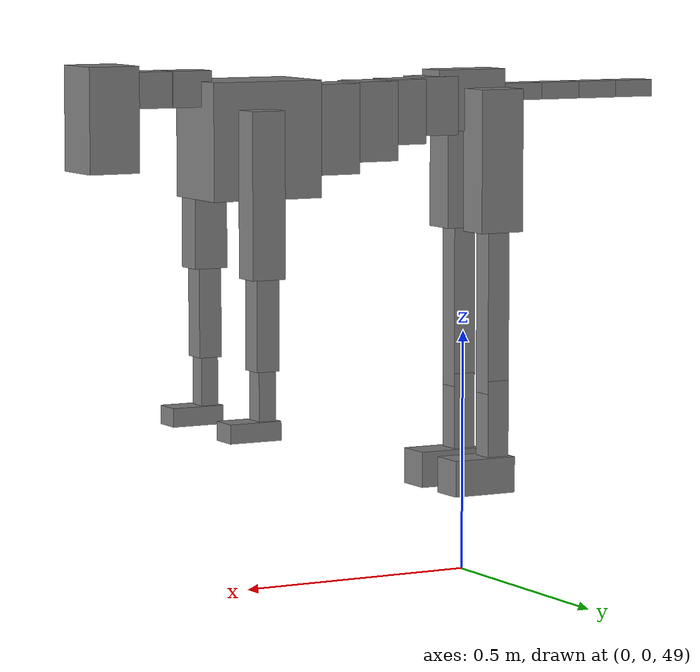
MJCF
<mujoco model="dog">

    <default>
        <joint armature="0.02" stiffness="1" damping="0.2" limited="true"/>
        <geom condim="3" friction="1 0.05 0.05" margin="0.01"/>
        <motor ctrllimited="true" ctrlrange="-1.0 1.0" forcelimited="true" gear="50"/>
    </default>

    <compiler inertiafromgeom="true" angle="radian"/>

    <option timestep="0.016" iterations="50" tolerance="1e-10" solver="Newton" jacobian="dense" cone="pyramidal"/>

    <size nconmax="20000" njmax="60000" nstack="5000000"/>
    <visual>
        <map force="0.1" zfar="30"/>
        <rgba haze="0.15 0.25 0.35 1"/>
        <quality shadowsize="2048"/>
        <global offwidth="800" offheight="800"/>
    </visual>

    <asset>
        <texture type="skybox" builtin="gradient" rgb1="0.3 0.5 0.7" rgb2="0 0 0" width="512" height="512"/>
        <texture name="texplane" type="2d" builtin="checker" rgb1=".2 .3 .4" rgb2=".1 0.15 0.2" width="512" height="512"
                 mark="cross" markrgb=".8 .8 .8"/>
        <texture name="texgeom" type="cube" builtin="flat" mark="cross" width="127" height="1278" rgb1="0.8 0.6 0.4"
                 rgb2="0.8 0.6 0.4" markrgb="1 1 1" random="0.01"/>

        <material name="matplane" reflectance="0.3" texture="texplane" texrepeat="1 1" texuniform="true"/>
        <material name="matgeom" texture="texgeom" texuniform="true" rgba="0.8 0.6 .4 1"/>
    </asset>

    <worldbody>
        <geom name="floor" pos="0 0 0" size="0 0 .25" type="plane" material="matplane" condim="3"/>

        <light directional="false" diffuse=".2 .2 .2" specular="0 0 0" pos="0 0 5" dir="0 0 -1" castshadow="false"/>
        <light mode="targetbodycom" target="torso" directional="false" diffuse=".8 .8 .8" specular="0.3 0.3 0.3"
               pos="0 0 4.0" dir="0 0 -1"/>

        <body name="root" pos="0 0 50">
            <freejoint name="root_1"/>
            <geom type="box" pos="0 0 -0.02" size="0.0774  0.0358  0.063" density="2030"/>

            <body name="spine1" pos="0.054 0 0">
                <joint name="spine1_y" axis="0 1 0" range="0 0.7" limited="true"/>
                <geom type="box" pos="0.02375 0 -0.03" size="0.04375  0.0375  0.05985" density="2030"/>

                <body name="spine2" pos="0.0612 0 0">
                    <joint name="spine2_y" axis="0 1 0" range="-0.15 0.15" limited="true"/>
                    <geom type="box" pos="0.03555  0  -0.04" size="0.04055  0.039  0.06615" density="2030"/>

                    <body name="spine3" pos="0.0730 0 0">
                        <joint name="spine3_y" axis="0 1 0" range="-0.15 0.15" limited="true"/>
                        <geom type="box" pos="0.03555  0  -0.057" size="0.04555  0.0445  0.081" density="2030"/>

                        <body name="spine4" pos="0.0780 0 0">
                            <joint name="spine4_y" axis="0 1 0" range="-0.15 0.15" limited="true"/>
                            <geom type="box" pos="0.05265  0  -0.07" size="0.05265  0.045  0.09135" density="2030"/>

                            <body name="torso" pos="0.1082 0 0">
                                <joint name="torso_y" axis="0 1 0" range="-0.15 0.15" limited="true"/>
                                <geom type="box" pos="0.11925  0  -0.085" size="0.11925  0.085  0.11745"
                                      density="2030"/>

                                <body name="neck1" pos="0.2160  0   0.0180">
                                    <joint name="neck1_y" axis="0 1 0" range="-1.2  -1" limited="true"/>
                                    <geom type="box" pos="0.0423  0  0" size="0.0423  0.03  0.036" density="2325"/>

                                    <body name="neck2" pos="0.0853  0  0">
                                        <joint name="neck2_y" axis="0 1 0" range="0.1  0" limited="true"/>
                                        <geom type="box" pos="0.0423  0  0" size="0.0423  0.03  0.036" density="2325"/>

                                        <body name="head" pos="0.0853  0  0">
                                            <joint name="head_y" axis="0 1 0" range="-0.3  -0.2" limited="true"/>
                                            <geom type="box" pos="0.0531  0  -0.055" size="0.0531  0.06  0.1044"
                                                  density="4030"/>

                                        </body>
                                    </body>
                                </body>

                                <body name="front_shoulder" pos="0.156  0   -0.0480">
                                    <joint name="front_shoulder_y" axis="0 1 0" range="-1 1.5" limited="true"/>
                                    <geom type="box" pos="0 0.13 -0.1393" size="0.0357  0.0305  0.1659" density="1158"/>
                                    <geom type="box" pos="0 -0.13 -0.1393" size="0.0357  0.0305  0.1659"
                                          density="1158"/>

                                    <body name="front_elbow" pos="0  0  -0.2785">
                                        <joint name="front_elbow_y" axis="0 1 0" range="-2 0" limited="true"/>
                                        <geom type="box" pos="0 0.13 -0.1043" size="0.0246  0.0251  0.1043"
                                              density="1081"/>
                                        <geom type="box" pos="0 -0.13 -0.1043" size="0.0246  0.0251  0.1043"
                                              density="1081"/>

                                        <body name="front_wrist" pos="0  0  -0.2087">
                                            <joint name="front_wrist_y" axis="0 1 0" range="-0.2 0" limited="true"/>
                                            <geom type="box" pos="0 0.13 -0.0567" size="0.0185  0.0205  0.0698"
                                                  density="1664"/>
                                            <geom type="box" pos="0 -0.13 -0.0567" size="0.0185  0.0205  0.0698"
                                                  density="1664"/>

                                            <body name="front_finger_end" pos="0  0  -0.1134">
                                                <joint name="front_finger_y" axis="0 1 0" range="-0.4 1"
                                                       limited="true"/>
                                                <geom type="box" pos="0.0305  0.13  -0.0042"
                                                      size="0.0559  0.0305  0.0192" density="1515"/>
                                                <geom type="box" pos="0.0305  -0.13  -0.0042"
                                                      size="0.0559  0.0305  0.0192" density="1515"/>

                                            </body>

                                        </body>
                                    </body>
                                </body>

                            </body>
                        </body>
                    </body>
                </body>
            </body>

            <body name="back_hip" pos="-0.03 0 -0.018">
                <joint name="back_hip_y" axis="0 1 0" range="-1.5 0.3" limited="true"/>
                <geom type="box" pos="0 0.07 -0.1239" size="0.0485  0.0381  0.1467" density="1154"/>
                <geom type="box" pos="0 -0.07 -0.1239" size="0.0485  0.0381  0.1467" density="1154"/>

                <body name="back_knee" pos="0  0  -0.2478">
                    <joint name="back_knee_y" axis="0 1 0" range="0 2.8" limited="true"/>
                    <geom type="box" pos="0 0.07 -0.1704" size="0.0246  0.0243  0.1859" density="1227"/>
                    <geom type="box" pos="0 -0.07 -0.1704" size="0.0246  0.0243  0.1859" density="1227"/>

                    <body name="back_ankle" pos="0  0  -0.3407">
                        <joint name="back_ankle_y" axis="0 1 0" range="-2.2 0" limited="true"/>
                        <geom type="box" pos="0 0.07 -0.0808" size="0.0244  0.0244  0.0920" density="1284"/>
                        <geom type="box" pos="0 -0.07 -0.0808" size="0.0244  0.0244  0.0920" density="1284"/>

                        <body name="back_toe_end" pos="0  0  -0.1615">
                            <joint name="back_toe_y" axis="0 1 0" range="-0.4 1" limited="true"/>
                            <geom type="box" pos="0.0380  0.07  -0.0223" size="0.0698  0.0380  0.0373" density="1515"/>
                            <geom type="box" pos="0.0380  -0.07  -0.0223" size="0.0698  0.0380  0.0373" density="1515"/>

                        </body>
                    </body>
                </body>
            </body>

            <body name="tail1" pos="-0.074 0 -0.006">
                <joint name="tail1_y" axis="0 1 0" range="-0.2 0.2" limited="true"/>
                <geom type="box" pos="-0.0536  0  0" size="0.045  0.025  0.0175" density="1587"/>

                <body name="tail2" pos="-0.09 0 0">
                    <joint name="tail2_y" axis="0 1 0" range="-0.2 0.2" limited="true"/>
                    <geom type="box" pos="-0.0536  0  0" size="0.045  0.025  0.0175" density="1587"/>

                    <body name="tail3" pos="-0.09 0 0">
                        <joint name="tail3_y" axis="0 1 0" range="-0.2 0.2" limited="true"/>
                        <geom type="box" pos="-0.0536  0  0" size="0.045  0.025  0.0175" density="1587"/>

                        <body name="tail4" pos="-0.09 0 0">
                            <joint name="tail4_y" axis="0 1 0" range="-0.2 0.2" limited="true"/>
                            <geom type="box" pos="-0.0536  0  0" size="0.045  0.025  0.0175" density="1587"/>

                        </body>
                    </body>
                </body>
            </body>
        </body>
    </worldbody>

    <actuator>
        <motor joint="spine1_y" forcerange="-150 150     "/>
        <motor joint="spine2_y" forcerange="-150 150     "/>
        <motor joint="spine3_y" forcerange="-150 150     "/>
        <motor joint="spine4_y" forcerange="-150 150     "/>
        <motor joint="torso_y" forcerange="-150 150     "/>
        <motor joint="neck1_y" forcerange="-100 100       "/>
        <motor joint="neck2_y" forcerange="-100 100       "/>
        <motor joint="head_y" forcerange="-150 150       "/>
        <motor joint="front_shoulder_y" forcerange="-194.61 108.62"/>
        <motor joint="front_elbow_y" forcerange="-125.32 157.43"/>
        <motor joint="front_wrist_y" forcerange="-113.67 50.66"/>
        <motor joint="front_finger_y" forcerange="-67.33 55.32"/>
        <motor joint="back_hip_y" forcerange="-349.60 357.88"/>
        <motor joint="back_knee_y" forcerange="-302.57 250.68"/>
        <motor joint="back_angle_y" forcerange="-153.65 136.52"/>
        <motor joint="back_toe_y" forcerange="-95.17 129.20"/>
        <motor joint="tail1_y" forcerange="-50 50     "/>
        <motor joint="tail2_y" forcerange="-50 50     "/>
        <motor joint="tail3_y" forcerange="-50 50     "/>
        <motor joint="tail4_y" forcerange="-50 50     "/>
    </actuator>
</mujoco>
